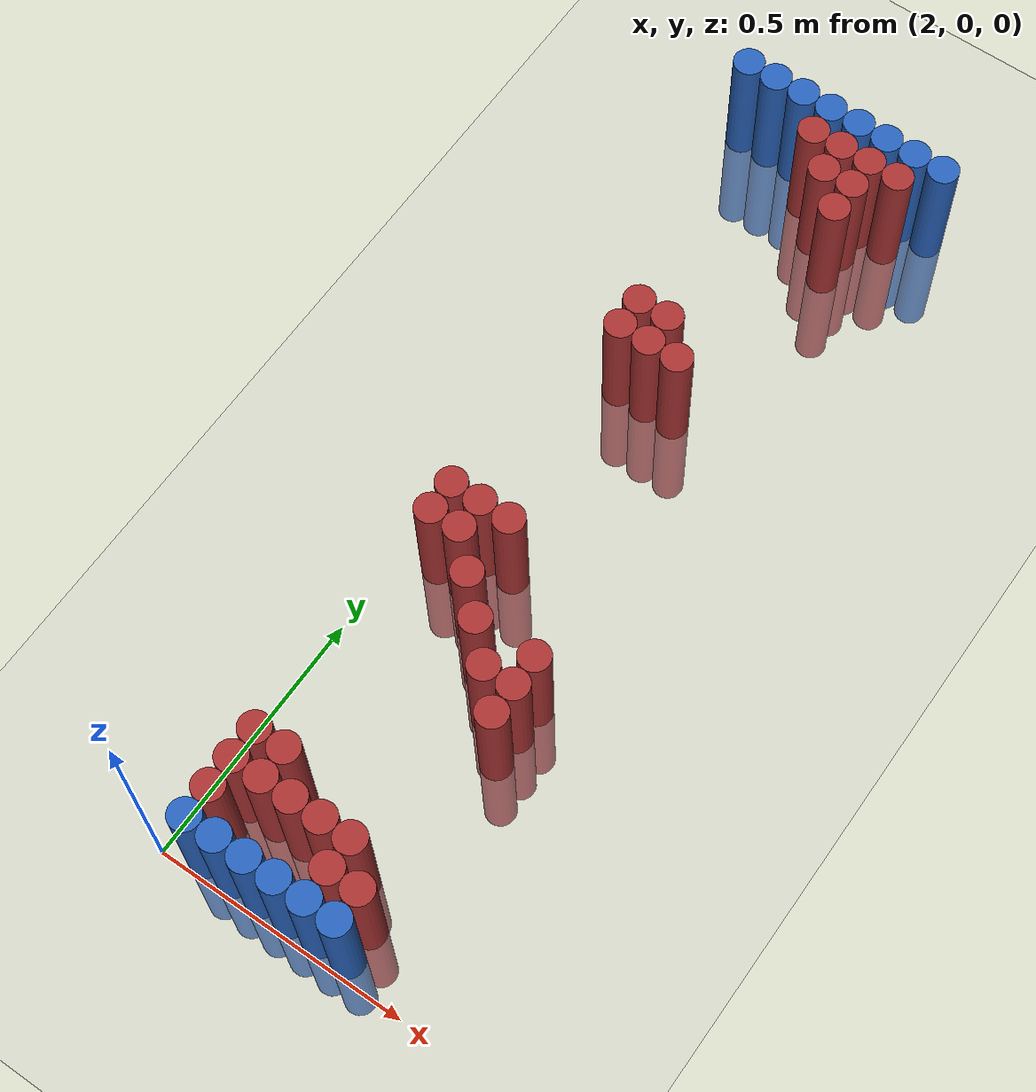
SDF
<sdf version="1.6">
 <world name="default">
  <model name="ground_plane">
   <static>1</static>
   <link name="link">
    <collision name="collision">
     <geometry><plane><normal>0 0 1</normal><size>100 100</size></plane></geometry>
     <surface><friction><ode><mu>100</mu><mu2>50</mu2></ode></friction></surface>
    </collision>
    <visual name="visual">
     <cast_shadows>0</cast_shadows>
     <geometry><plane><normal>0 0 1</normal><size>100 100</size></plane></geometry>
     <material>
      <script><uri>file://media/materials/scripts/gazebo.material</uri><name>Gazebo/Grey</name></script>
     </material>
    </visual>
   </link>
  </model>
  <model name="unit_cylinder_94">
   <static>1</static>
   <pose>2.010000 1.770000 0.000000 0.000000 0.000000 0.000000</pose>
   <link name="link">
    <inertial>
     <mass>1</mass>
     <inertia><ixx>0.145833</ixx><ixy>0</ixy><ixz>0</ixz><iyy>0.145833</iyy><iyz>0</iyz><izz>0.125</izz></inertia>
    </inertial>
    <collision name="collision">
     <geometry><cylinder><radius>0.030000</radius><length>0.5</length></cylinder></geometry>
    </collision>
    <visual name="visual">
     <geometry><cylinder><radius>0.030000</radius><length>0.5</length></cylinder></geometry>
     <material>
      <ambient>0.152000 0.379000 0.720000 1</ambient>
      <diffuse>0.152000 0.379000 0.720000 1</diffuse>
     </material>
     <material>
      <script><name>Gazebo/Grey</name><uri>file://media/materials/scripts/gazebo.material</uri></script>
     </material>
    </visual>
   </link>
  </model>
  <model name="unit_cylinder_95">
   <static>1</static>
   <pose>2.070000 1.770000 0.000000 0.000000 0.000000 0.000000</pose>
   <link name="link">
    <inertial>
     <mass>1</mass>
     <inertia><ixx>0.145833</ixx><ixy>0</ixy><ixz>0</ixz><iyy>0.145833</iyy><iyz>0</iyz><izz>0.125</izz></inertia>
    </inertial>
    <collision name="collision">
     <geometry><cylinder><radius>0.030000</radius><length>0.5</length></cylinder></geometry>
    </collision>
    <visual name="visual">
     <geometry><cylinder><radius>0.030000</radius><length>0.5</length></cylinder></geometry>
     <material>
      <ambient>0.152000 0.379000 0.720000 1</ambient>
      <diffuse>0.152000 0.379000 0.720000 1</diffuse>
     </material>
     <material>
      <script><name>Gazebo/Grey</name><uri>file://media/materials/scripts/gazebo.material</uri></script>
     </material>
    </visual>
   </link>
  </model>
  <model name="unit_cylinder_96">
   <static>1</static>
   <pose>2.130000 1.770000 0.000000 0.000000 0.000000 0.000000</pose>
   <link name="link">
    <inertial>
     <mass>1</mass>
     <inertia><ixx>0.145833</ixx><ixy>0</ixy><ixz>0</ixz><iyy>0.145833</iyy><iyz>0</iyz><izz>0.125</izz></inertia>
    </inertial>
    <collision name="collision">
     <geometry><cylinder><radius>0.030000</radius><length>0.5</length></cylinder></geometry>
    </collision>
    <visual name="visual">
     <geometry><cylinder><radius>0.030000</radius><length>0.5</length></cylinder></geometry>
     <material>
      <ambient>0.152000 0.379000 0.720000 1</ambient>
      <diffuse>0.152000 0.379000 0.720000 1</diffuse>
     </material>
     <material>
      <script><name>Gazebo/Grey</name><uri>file://media/materials/scripts/gazebo.material</uri></script>
     </material>
    </visual>
   </link>
  </model>
  <model name="unit_cylinder_97">
   <static>1</static>
   <pose>2.190000 1.770000 0.000000 0.000000 0.000000 0.000000</pose>
   <link name="link">
    <inertial>
     <mass>1</mass>
     <inertia><ixx>0.145833</ixx><ixy>0</ixy><ixz>0</ixz><iyy>0.145833</iyy><iyz>0</iyz><izz>0.125</izz></inertia>
    </inertial>
    <collision name="collision">
     <geometry><cylinder><radius>0.030000</radius><length>0.5</length></cylinder></geometry>
    </collision>
    <visual name="visual">
     <geometry><cylinder><radius>0.030000</radius><length>0.5</length></cylinder></geometry>
     <material>
      <ambient>0.152000 0.379000 0.720000 1</ambient>
      <diffuse>0.152000 0.379000 0.720000 1</diffuse>
     </material>
     <material>
      <script><name>Gazebo/Grey</name><uri>file://media/materials/scripts/gazebo.material</uri></script>
     </material>
    </visual>
   </link>
  </model>
  <model name="unit_cylinder_98">
   <static>1</static>
   <pose>2.250000 1.770000 0.000000 0.000000 0.000000 0.000000</pose>
   <link name="link">
    <inertial>
     <mass>1</mass>
     <inertia><ixx>0.145833</ixx><ixy>0</ixy><ixz>0</ixz><iyy>0.145833</iyy><iyz>0</iyz><izz>0.125</izz></inertia>
    </inertial>
    <collision name="collision">
     <geometry><cylinder><radius>0.030000</radius><length>0.5</length></cylinder></geometry>
    </collision>
    <visual name="visual">
     <geometry><cylinder><radius>0.030000</radius><length>0.5</length></cylinder></geometry>
     <material>
      <ambient>0.152000 0.379000 0.720000 1</ambient>
      <diffuse>0.152000 0.379000 0.720000 1</diffuse>
     </material>
     <material>
      <script><name>Gazebo/Grey</name><uri>file://media/materials/scripts/gazebo.material</uri></script>
     </material>
    </visual>
   </link>
  </model>
  <model name="unit_cylinder_99">
   <static>1</static>
   <pose>2.310000 1.770000 0.000000 0.000000 0.000000 0.000000</pose>
   <link name="link">
    <inertial>
     <mass>1</mass>
     <inertia><ixx>0.145833</ixx><ixy>0</ixy><ixz>0</ixz><iyy>0.145833</iyy><iyz>0</iyz><izz>0.125</izz></inertia>
    </inertial>
    <collision name="collision">
     <geometry><cylinder><radius>0.030000</radius><length>0.5</length></cylinder></geometry>
    </collision>
    <visual name="visual">
     <geometry><cylinder><radius>0.030000</radius><length>0.5</length></cylinder></geometry>
     <material>
      <ambient>0.152000 0.379000 0.720000 1</ambient>
      <diffuse>0.152000 0.379000 0.720000 1</diffuse>
     </material>
     <material>
      <script><name>Gazebo/Grey</name><uri>file://media/materials/scripts/gazebo.material</uri></script>
     </material>
    </visual>
   </link>
  </model>
  <model name="unit_cylinder_100">
   <static>1</static>
   <pose>2.370000 1.770000 0.000000 0.000000 0.000000 0.000000</pose>
   <link name="link">
    <inertial>
     <mass>1</mass>
     <inertia><ixx>0.145833</ixx><ixy>0</ixy><ixz>0</ixz><iyy>0.145833</iyy><iyz>0</iyz><izz>0.125</izz></inertia>
    </inertial>
    <collision name="collision">
     <geometry><cylinder><radius>0.030000</radius><length>0.5</length></cylinder></geometry>
    </collision>
    <visual name="visual">
     <geometry><cylinder><radius>0.030000</radius><length>0.5</length></cylinder></geometry>
     <material>
      <ambient>0.152000 0.379000 0.720000 1</ambient>
      <diffuse>0.152000 0.379000 0.720000 1</diffuse>
     </material>
     <material>
      <script><name>Gazebo/Grey</name><uri>file://media/materials/scripts/gazebo.material</uri></script>
     </material>
    </visual>
   </link>
  </model>
  <model name="unit_cylinder_101">
   <static>1</static>
   <pose>2.430000 1.770000 0.000000 0.000000 0.000000 0.000000</pose>
   <link name="link">
    <inertial>
     <mass>1</mass>
     <inertia><ixx>0.145833</ixx><ixy>0</ixy><ixz>0</ixz><iyy>0.145833</iyy><iyz>0</iyz><izz>0.125</izz></inertia>
    </inertial>
    <collision name="collision">
     <geometry><cylinder><radius>0.030000</radius><length>0.5</length></cylinder></geometry>
    </collision>
    <visual name="visual">
     <geometry><cylinder><radius>0.030000</radius><length>0.5</length></cylinder></geometry>
     <material>
      <ambient>0.152000 0.379000 0.720000 1</ambient>
      <diffuse>0.152000 0.379000 0.720000 1</diffuse>
     </material>
     <material>
      <script><name>Gazebo/Grey</name><uri>file://media/materials/scripts/gazebo.material</uri></script>
     </material>
    </visual>
   </link>
  </model>
  <model name="unit_cylinder_125">
   <static>1</static>
   <pose>2.190000 1.710000 0.000000 0.000000 0.000000 0.000000</pose>
   <link name="link">
    <inertial>
     <mass>1</mass>
     <inertia><ixx>0.145833</ixx><ixy>0</ixy><ixz>0</ixz><iyy>0.145833</iyy><iyz>0</iyz><izz>0.125</izz></inertia>
    </inertial>
    <collision name="collision">
     <geometry><cylinder><radius>0.030000</radius><length>0.5</length></cylinder></geometry>
    </collision>
    <visual name="visual">
     <geometry><cylinder><radius>0.030000</radius><length>0.5</length></cylinder></geometry>
     <material>
      <ambient>0.648000 0.192000 0.192000 1</ambient>
      <diffuse>0.648000 0.192000 0.192000 1</diffuse>
     </material>
     <material>
      <script><name>Gazebo/Grey</name><uri>file://media/materials/scripts/gazebo.material</uri></script>
     </material>
    </visual>
   </link>
  </model>
  <model name="unit_cylinder_126">
   <static>1</static>
   <pose>2.250000 1.710000 0.000000 0.000000 0.000000 0.000000</pose>
   <link name="link">
    <inertial>
     <mass>1</mass>
     <inertia><ixx>0.145833</ixx><ixy>0</ixy><ixz>0</ixz><iyy>0.145833</iyy><iyz>0</iyz><izz>0.125</izz></inertia>
    </inertial>
    <collision name="collision">
     <geometry><cylinder><radius>0.030000</radius><length>0.5</length></cylinder></geometry>
    </collision>
    <visual name="visual">
     <geometry><cylinder><radius>0.030000</radius><length>0.5</length></cylinder></geometry>
     <material>
      <ambient>0.648000 0.192000 0.192000 1</ambient>
      <diffuse>0.648000 0.192000 0.192000 1</diffuse>
     </material>
     <material>
      <script><name>Gazebo/Grey</name><uri>file://media/materials/scripts/gazebo.material</uri></script>
     </material>
    </visual>
   </link>
  </model>
  <model name="unit_cylinder_127">
   <static>1</static>
   <pose>2.310000 1.710000 0.000000 0.000000 0.000000 0.000000</pose>
   <link name="link">
    <inertial>
     <mass>1</mass>
     <inertia><ixx>0.145833</ixx><ixy>0</ixy><ixz>0</ixz><iyy>0.145833</iyy><iyz>0</iyz><izz>0.125</izz></inertia>
    </inertial>
    <collision name="collision">
     <geometry><cylinder><radius>0.030000</radius><length>0.5</length></cylinder></geometry>
    </collision>
    <visual name="visual">
     <geometry><cylinder><radius>0.030000</radius><length>0.5</length></cylinder></geometry>
     <material>
      <ambient>0.648000 0.192000 0.192000 1</ambient>
      <diffuse>0.648000 0.192000 0.192000 1</diffuse>
     </material>
     <material>
      <script><name>Gazebo/Grey</name><uri>file://media/materials/scripts/gazebo.material</uri></script>
     </material>
    </visual>
   </link>
  </model>
  <model name="unit_cylinder_128">
   <static>1</static>
   <pose>2.370000 1.710000 0.000000 0.000000 0.000000 0.000000</pose>
   <link name="link">
    <inertial>
     <mass>1</mass>
     <inertia><ixx>0.145833</ixx><ixy>0</ixy><ixz>0</ixz><iyy>0.145833</iyy><iyz>0</iyz><izz>0.125</izz></inertia>
    </inertial>
    <collision name="collision">
     <geometry><cylinder><radius>0.030000</radius><length>0.5</length></cylinder></geometry>
    </collision>
    <visual name="visual">
     <geometry><cylinder><radius>0.030000</radius><length>0.5</length></cylinder></geometry>
     <material>
      <ambient>0.648000 0.192000 0.192000 1</ambient>
      <diffuse>0.648000 0.192000 0.192000 1</diffuse>
     </material>
     <material>
      <script><name>Gazebo/Grey</name><uri>file://media/materials/scripts/gazebo.material</uri></script>
     </material>
    </visual>
   </link>
  </model>
  <model name="unit_cylinder_140">
   <static>1</static>
   <pose>2.250000 1.650000 0.000000 0.000000 0.000000 0.000000</pose>
   <link name="link">
    <inertial>
     <mass>1</mass>
     <inertia><ixx>0.145833</ixx><ixy>0</ixy><ixz>0</ixz><iyy>0.145833</iyy><iyz>0</iyz><izz>0.125</izz></inertia>
    </inertial>
    <collision name="collision">
     <geometry><cylinder><radius>0.030000</radius><length>0.5</length></cylinder></geometry>
    </collision>
    <visual name="visual">
     <geometry><cylinder><radius>0.030000</radius><length>0.5</length></cylinder></geometry>
     <material>
      <ambient>0.648000 0.192000 0.192000 1</ambient>
      <diffuse>0.648000 0.192000 0.192000 1</diffuse>
     </material>
     <material>
      <script><name>Gazebo/Grey</name><uri>file://media/materials/scripts/gazebo.material</uri></script>
     </material>
    </visual>
   </link>
  </model>
  <model name="unit_cylinder_141">
   <static>1</static>
   <pose>2.310000 1.650000 0.000000 0.000000 0.000000 0.000000</pose>
   <link name="link">
    <inertial>
     <mass>1</mass>
     <inertia><ixx>0.145833</ixx><ixy>0</ixy><ixz>0</ixz><iyy>0.145833</iyy><iyz>0</iyz><izz>0.125</izz></inertia>
    </inertial>
    <collision name="collision">
     <geometry><cylinder><radius>0.030000</radius><length>0.5</length></cylinder></geometry>
    </collision>
    <visual name="visual">
     <geometry><cylinder><radius>0.030000</radius><length>0.5</length></cylinder></geometry>
     <material>
      <ambient>0.648000 0.192000 0.192000 1</ambient>
      <diffuse>0.648000 0.192000 0.192000 1</diffuse>
     </material>
     <material>
      <script><name>Gazebo/Grey</name><uri>file://media/materials/scripts/gazebo.material</uri></script>
     </material>
    </visual>
   </link>
  </model>
  <model name="unit_cylinder_149">
   <static>1</static>
   <pose>2.310000 1.590000 0.000000 0.000000 0.000000 0.000000</pose>
   <link name="link">
    <inertial>
     <mass>1</mass>
     <inertia><ixx>0.145833</ixx><ixy>0</ixy><ixz>0</ixz><iyy>0.145833</iyy><iyz>0</iyz><izz>0.125</izz></inertia>
    </inertial>
    <collision name="collision">
     <geometry><cylinder><radius>0.030000</radius><length>0.5</length></cylinder></geometry>
    </collision>
    <visual name="visual">
     <geometry><cylinder><radius>0.030000</radius><length>0.5</length></cylinder></geometry>
     <material>
      <ambient>0.648000 0.192000 0.192000 1</ambient>
      <diffuse>0.648000 0.192000 0.192000 1</diffuse>
     </material>
     <material>
      <script><name>Gazebo/Grey</name><uri>file://media/materials/scripts/gazebo.material</uri></script>
     </material>
    </visual>
   </link>
  </model>
  <model name="unit_cylinder_179">
   <static>1</static>
   <pose>2.130000 1.230000 0.000000 0.000000 0.000000 0.000000</pose>
   <link name="link">
    <inertial>
     <mass>1</mass>
     <inertia><ixx>0.145833</ixx><ixy>0</ixy><ixz>0</ixz><iyy>0.145833</iyy><iyz>0</iyz><izz>0.125</izz></inertia>
    </inertial>
    <collision name="collision">
     <geometry><cylinder><radius>0.030000</radius><length>0.5</length></cylinder></geometry>
    </collision>
    <visual name="visual">
     <geometry><cylinder><radius>0.030000</radius><length>0.5</length></cylinder></geometry>
     <material>
      <ambient>0.648000 0.192000 0.192000 1</ambient>
      <diffuse>0.648000 0.192000 0.192000 1</diffuse>
     </material>
     <material>
      <script><name>Gazebo/Grey</name><uri>file://media/materials/scripts/gazebo.material</uri></script>
     </material>
    </visual>
   </link>
  </model>
  <model name="unit_cylinder_180">
   <static>1</static>
   <pose>2.190000 1.230000 0.000000 0.000000 0.000000 0.000000</pose>
   <link name="link">
    <inertial>
     <mass>1</mass>
     <inertia><ixx>0.145833</ixx><ixy>0</ixy><ixz>0</ixz><iyy>0.145833</iyy><iyz>0</iyz><izz>0.125</izz></inertia>
    </inertial>
    <collision name="collision">
     <geometry><cylinder><radius>0.030000</radius><length>0.5</length></cylinder></geometry>
    </collision>
    <visual name="visual">
     <geometry><cylinder><radius>0.030000</radius><length>0.5</length></cylinder></geometry>
     <material>
      <ambient>0.648000 0.192000 0.192000 1</ambient>
      <diffuse>0.648000 0.192000 0.192000 1</diffuse>
     </material>
     <material>
      <script><name>Gazebo/Grey</name><uri>file://media/materials/scripts/gazebo.material</uri></script>
     </material>
    </visual>
   </link>
  </model>
  <model name="unit_cylinder_181">
   <static>1</static>
   <pose>2.130000 1.170000 0.000000 0.000000 0.000000 0.000000</pose>
   <link name="link">
    <inertial>
     <mass>1</mass>
     <inertia><ixx>0.145833</ixx><ixy>0</ixy><ixz>0</ixz><iyy>0.145833</iyy><iyz>0</iyz><izz>0.125</izz></inertia>
    </inertial>
    <collision name="collision">
     <geometry><cylinder><radius>0.030000</radius><length>0.5</length></cylinder></geometry>
    </collision>
    <visual name="visual">
     <geometry><cylinder><radius>0.030000</radius><length>0.5</length></cylinder></geometry>
     <material>
      <ambient>0.648000 0.192000 0.192000 1</ambient>
      <diffuse>0.648000 0.192000 0.192000 1</diffuse>
     </material>
     <material>
      <script><name>Gazebo/Grey</name><uri>file://media/materials/scripts/gazebo.material</uri></script>
     </material>
    </visual>
   </link>
  </model>
  <model name="unit_cylinder_182">
   <static>1</static>
   <pose>2.190000 1.170000 0.000000 0.000000 0.000000 0.000000</pose>
   <link name="link">
    <inertial>
     <mass>1</mass>
     <inertia><ixx>0.145833</ixx><ixy>0</ixy><ixz>0</ixz><iyy>0.145833</iyy><iyz>0</iyz><izz>0.125</izz></inertia>
    </inertial>
    <collision name="collision">
     <geometry><cylinder><radius>0.030000</radius><length>0.5</length></cylinder></geometry>
    </collision>
    <visual name="visual">
     <geometry><cylinder><radius>0.030000</radius><length>0.5</length></cylinder></geometry>
     <material>
      <ambient>0.648000 0.192000 0.192000 1</ambient>
      <diffuse>0.648000 0.192000 0.192000 1</diffuse>
     </material>
     <material>
      <script><name>Gazebo/Grey</name><uri>file://media/materials/scripts/gazebo.material</uri></script>
     </material>
    </visual>
   </link>
  </model>
  <model name="unit_cylinder_183">
   <static>1</static>
   <pose>2.250000 1.170000 0.000000 0.000000 0.000000 0.000000</pose>
   <link name="link">
    <inertial>
     <mass>1</mass>
     <inertia><ixx>0.145833</ixx><ixy>0</ixy><ixz>0</ixz><iyy>0.145833</iyy><iyz>0</iyz><izz>0.125</izz></inertia>
    </inertial>
    <collision name="collision">
     <geometry><cylinder><radius>0.030000</radius><length>0.5</length></cylinder></geometry>
    </collision>
    <visual name="visual">
     <geometry><cylinder><radius>0.030000</radius><length>0.5</length></cylinder></geometry>
     <material>
      <ambient>0.648000 0.192000 0.192000 1</ambient>
      <diffuse>0.648000 0.192000 0.192000 1</diffuse>
     </material>
     <material>
      <script><name>Gazebo/Grey</name><uri>file://media/materials/scripts/gazebo.material</uri></script>
     </material>
    </visual>
   </link>
  </model>
  <model name="unit_cylinder_204">
   <static>1</static>
   <pose>2.070000 0.750000 0.000000 0.000000 0.000000 0.000000</pose>
   <link name="link">
    <inertial>
     <mass>1</mass>
     <inertia><ixx>0.145833</ixx><ixy>0</ixy><ixz>0</ixz><iyy>0.145833</iyy><iyz>0</iyz><izz>0.125</izz></inertia>
    </inertial>
    <collision name="collision">
     <geometry><cylinder><radius>0.030000</radius><length>0.5</length></cylinder></geometry>
    </collision>
    <visual name="visual">
     <geometry><cylinder><radius>0.030000</radius><length>0.5</length></cylinder></geometry>
     <material>
      <ambient>0.648000 0.192000 0.192000 1</ambient>
      <diffuse>0.648000 0.192000 0.192000 1</diffuse>
     </material>
     <material>
      <script><name>Gazebo/Grey</name><uri>file://media/materials/scripts/gazebo.material</uri></script>
     </material>
    </visual>
   </link>
  </model>
  <model name="unit_cylinder_205">
   <static>1</static>
   <pose>2.130000 0.750000 0.000000 0.000000 0.000000 0.000000</pose>
   <link name="link">
    <inertial>
     <mass>1</mass>
     <inertia><ixx>0.145833</ixx><ixy>0</ixy><ixz>0</ixz><iyy>0.145833</iyy><iyz>0</iyz><izz>0.125</izz></inertia>
    </inertial>
    <collision name="collision">
     <geometry><cylinder><radius>0.030000</radius><length>0.5</length></cylinder></geometry>
    </collision>
    <visual name="visual">
     <geometry><cylinder><radius>0.030000</radius><length>0.5</length></cylinder></geometry>
     <material>
      <ambient>0.648000 0.192000 0.192000 1</ambient>
      <diffuse>0.648000 0.192000 0.192000 1</diffuse>
     </material>
     <material>
      <script><name>Gazebo/Grey</name><uri>file://media/materials/scripts/gazebo.material</uri></script>
     </material>
    </visual>
   </link>
  </model>
  <model name="unit_cylinder_206">
   <static>1</static>
   <pose>2.190000 0.750000 0.000000 0.000000 0.000000 0.000000</pose>
   <link name="link">
    <inertial>
     <mass>1</mass>
     <inertia><ixx>0.145833</ixx><ixy>0</ixy><ixz>0</ixz><iyy>0.145833</iyy><iyz>0</iyz><izz>0.125</izz></inertia>
    </inertial>
    <collision name="collision">
     <geometry><cylinder><radius>0.030000</radius><length>0.5</length></cylinder></geometry>
    </collision>
    <visual name="visual">
     <geometry><cylinder><radius>0.030000</radius><length>0.5</length></cylinder></geometry>
     <material>
      <ambient>0.648000 0.192000 0.192000 1</ambient>
      <diffuse>0.648000 0.192000 0.192000 1</diffuse>
     </material>
     <material>
      <script><name>Gazebo/Grey</name><uri>file://media/materials/scripts/gazebo.material</uri></script>
     </material>
    </visual>
   </link>
  </model>
  <model name="unit_cylinder_211">
   <static>1</static>
   <pose>2.070000 0.690000 0.000000 0.000000 0.000000 0.000000</pose>
   <link name="link">
    <inertial>
     <mass>1</mass>
     <inertia><ixx>0.145833</ixx><ixy>0</ixy><ixz>0</ixz><iyy>0.145833</iyy><iyz>0</iyz><izz>0.125</izz></inertia>
    </inertial>
    <collision name="collision">
     <geometry><cylinder><radius>0.030000</radius><length>0.5</length></cylinder></geometry>
    </collision>
    <visual name="visual">
     <geometry><cylinder><radius>0.030000</radius><length>0.5</length></cylinder></geometry>
     <material>
      <ambient>0.648000 0.192000 0.192000 1</ambient>
      <diffuse>0.648000 0.192000 0.192000 1</diffuse>
     </material>
     <material>
      <script><name>Gazebo/Grey</name><uri>file://media/materials/scripts/gazebo.material</uri></script>
     </material>
    </visual>
   </link>
  </model>
  <model name="unit_cylinder_212">
   <static>1</static>
   <pose>2.130000 0.690000 0.000000 0.000000 0.000000 0.000000</pose>
   <link name="link">
    <inertial>
     <mass>1</mass>
     <inertia><ixx>0.145833</ixx><ixy>0</ixy><ixz>0</ixz><iyy>0.145833</iyy><iyz>0</iyz><izz>0.125</izz></inertia>
    </inertial>
    <collision name="collision">
     <geometry><cylinder><radius>0.030000</radius><length>0.5</length></cylinder></geometry>
    </collision>
    <visual name="visual">
     <geometry><cylinder><radius>0.030000</radius><length>0.5</length></cylinder></geometry>
     <material>
      <ambient>0.648000 0.192000 0.192000 1</ambient>
      <diffuse>0.648000 0.192000 0.192000 1</diffuse>
     </material>
     <material>
      <script><name>Gazebo/Grey</name><uri>file://media/materials/scripts/gazebo.material</uri></script>
     </material>
    </visual>
   </link>
  </model>
  <model name="unit_cylinder_218">
   <static>1</static>
   <pose>2.190000 0.630000 0.000000 0.000000 0.000000 0.000000</pose>
   <link name="link">
    <inertial>
     <mass>1</mass>
     <inertia><ixx>0.145833</ixx><ixy>0</ixy><ixz>0</ixz><iyy>0.145833</iyy><iyz>0</iyz><izz>0.125</izz></inertia>
    </inertial>
    <collision name="collision">
     <geometry><cylinder><radius>0.030000</radius><length>0.5</length></cylinder></geometry>
    </collision>
    <visual name="visual">
     <geometry><cylinder><radius>0.030000</radius><length>0.5</length></cylinder></geometry>
     <material>
      <ambient>0.648000 0.192000 0.192000 1</ambient>
      <diffuse>0.648000 0.192000 0.192000 1</diffuse>
     </material>
     <material>
      <script><name>Gazebo/Grey</name><uri>file://media/materials/scripts/gazebo.material</uri></script>
     </material>
    </visual>
   </link>
  </model>
  <model name="unit_cylinder_223">
   <static>1</static>
   <pose>2.250000 0.570000 0.000000 0.000000 0.000000 0.000000</pose>
   <link name="link">
    <inertial>
     <mass>1</mass>
     <inertia><ixx>0.145833</ixx><ixy>0</ixy><ixz>0</ixz><iyy>0.145833</iyy><iyz>0</iyz><izz>0.125</izz></inertia>
    </inertial>
    <collision name="collision">
     <geometry><cylinder><radius>0.030000</radius><length>0.5</length></cylinder></geometry>
    </collision>
    <visual name="visual">
     <geometry><cylinder><radius>0.030000</radius><length>0.5</length></cylinder></geometry>
     <material>
      <ambient>0.648000 0.192000 0.192000 1</ambient>
      <diffuse>0.648000 0.192000 0.192000 1</diffuse>
     </material>
     <material>
      <script><name>Gazebo/Grey</name><uri>file://media/materials/scripts/gazebo.material</uri></script>
     </material>
    </visual>
   </link>
  </model>
  <model name="unit_cylinder_224">
   <static>1</static>
   <pose>2.370000 0.570000 0.000000 0.000000 0.000000 0.000000</pose>
   <link name="link">
    <inertial>
     <mass>1</mass>
     <inertia><ixx>0.145833</ixx><ixy>0</ixy><ixz>0</ixz><iyy>0.145833</iyy><iyz>0</iyz><izz>0.125</izz></inertia>
    </inertial>
    <collision name="collision">
     <geometry><cylinder><radius>0.030000</radius><length>0.5</length></cylinder></geometry>
    </collision>
    <visual name="visual">
     <geometry><cylinder><radius>0.030000</radius><length>0.5</length></cylinder></geometry>
     <material>
      <ambient>0.648000 0.192000 0.192000 1</ambient>
      <diffuse>0.648000 0.192000 0.192000 1</diffuse>
     </material>
     <material>
      <script><name>Gazebo/Grey</name><uri>file://media/materials/scripts/gazebo.material</uri></script>
     </material>
    </visual>
   </link>
  </model>
  <model name="unit_cylinder_231">
   <static>1</static>
   <pose>2.310000 0.510000 0.000000 0.000000 0.000000 0.000000</pose>
   <link name="link">
    <inertial>
     <mass>1</mass>
     <inertia><ixx>0.145833</ixx><ixy>0</ixy><ixz>0</ixz><iyy>0.145833</iyy><iyz>0</iyz><izz>0.125</izz></inertia>
    </inertial>
    <collision name="collision">
     <geometry><cylinder><radius>0.030000</radius><length>0.5</length></cylinder></geometry>
    </collision>
    <visual name="visual">
     <geometry><cylinder><radius>0.030000</radius><length>0.5</length></cylinder></geometry>
     <material>
      <ambient>0.648000 0.192000 0.192000 1</ambient>
      <diffuse>0.648000 0.192000 0.192000 1</diffuse>
     </material>
     <material>
      <script><name>Gazebo/Grey</name><uri>file://media/materials/scripts/gazebo.material</uri></script>
     </material>
    </visual>
   </link>
  </model>
  <model name="unit_cylinder_232">
   <static>1</static>
   <pose>2.370000 0.510000 0.000000 0.000000 0.000000 0.000000</pose>
   <link name="link">
    <inertial>
     <mass>1</mass>
     <inertia><ixx>0.145833</ixx><ixy>0</ixy><ixz>0</ixz><iyy>0.145833</iyy><iyz>0</iyz><izz>0.125</izz></inertia>
    </inertial>
    <collision name="collision">
     <geometry><cylinder><radius>0.030000</radius><length>0.5</length></cylinder></geometry>
    </collision>
    <visual name="visual">
     <geometry><cylinder><radius>0.030000</radius><length>0.5</length></cylinder></geometry>
     <material>
      <ambient>0.648000 0.192000 0.192000 1</ambient>
      <diffuse>0.648000 0.192000 0.192000 1</diffuse>
     </material>
     <material>
      <script><name>Gazebo/Grey</name><uri>file://media/materials/scripts/gazebo.material</uri></script>
     </material>
    </visual>
   </link>
  </model>
  <model name="unit_cylinder_239">
   <static>1</static>
   <pose>2.370000 0.450000 0.000000 0.000000 0.000000 0.000000</pose>
   <link name="link">
    <inertial>
     <mass>1</mass>
     <inertia><ixx>0.145833</ixx><ixy>0</ixy><ixz>0</ixz><iyy>0.145833</iyy><iyz>0</iyz><izz>0.125</izz></inertia>
    </inertial>
    <collision name="collision">
     <geometry><cylinder><radius>0.030000</radius><length>0.5</length></cylinder></geometry>
    </collision>
    <visual name="visual">
     <geometry><cylinder><radius>0.030000</radius><length>0.5</length></cylinder></geometry>
     <material>
      <ambient>0.648000 0.192000 0.192000 1</ambient>
      <diffuse>0.648000 0.192000 0.192000 1</diffuse>
     </material>
     <material>
      <script><name>Gazebo/Grey</name><uri>file://media/materials/scripts/gazebo.material</uri></script>
     </material>
    </visual>
   </link>
  </model>
  <model name="unit_cylinder_265">
   <static>1</static>
   <pose>2.070000 0.210000 0.000000 0.000000 0.000000 0.000000</pose>
   <link name="link">
    <inertial>
     <mass>1</mass>
     <inertia><ixx>0.145833</ixx><ixy>0</ixy><ixz>0</ixz><iyy>0.145833</iyy><iyz>0</iyz><izz>0.125</izz></inertia>
    </inertial>
    <collision name="collision">
     <geometry><cylinder><radius>0.030000</radius><length>0.5</length></cylinder></geometry>
    </collision>
    <visual name="visual">
     <geometry><cylinder><radius>0.030000</radius><length>0.5</length></cylinder></geometry>
     <material>
      <ambient>0.648000 0.192000 0.192000 1</ambient>
      <diffuse>0.648000 0.192000 0.192000 1</diffuse>
     </material>
     <material>
      <script><name>Gazebo/Grey</name><uri>file://media/materials/scripts/gazebo.material</uri></script>
     </material>
    </visual>
   </link>
  </model>
  <model name="unit_cylinder_266">
   <static>1</static>
   <pose>2.130000 0.210000 0.000000 0.000000 0.000000 0.000000</pose>
   <link name="link">
    <inertial>
     <mass>1</mass>
     <inertia><ixx>0.145833</ixx><ixy>0</ixy><ixz>0</ixz><iyy>0.145833</iyy><iyz>0</iyz><izz>0.125</izz></inertia>
    </inertial>
    <collision name="collision">
     <geometry><cylinder><radius>0.030000</radius><length>0.5</length></cylinder></geometry>
    </collision>
    <visual name="visual">
     <geometry><cylinder><radius>0.030000</radius><length>0.5</length></cylinder></geometry>
     <material>
      <ambient>0.648000 0.192000 0.192000 1</ambient>
      <diffuse>0.648000 0.192000 0.192000 1</diffuse>
     </material>
     <material>
      <script><name>Gazebo/Grey</name><uri>file://media/materials/scripts/gazebo.material</uri></script>
     </material>
    </visual>
   </link>
  </model>
  <model name="unit_cylinder_269">
   <static>1</static>
   <pose>2.070000 0.150000 0.000000 0.000000 0.000000 0.000000</pose>
   <link name="link">
    <inertial>
     <mass>1</mass>
     <inertia><ixx>0.145833</ixx><ixy>0</ixy><ixz>0</ixz><iyy>0.145833</iyy><iyz>0</iyz><izz>0.125</izz></inertia>
    </inertial>
    <collision name="collision">
     <geometry><cylinder><radius>0.030000</radius><length>0.5</length></cylinder></geometry>
    </collision>
    <visual name="visual">
     <geometry><cylinder><radius>0.030000</radius><length>0.5</length></cylinder></geometry>
     <material>
      <ambient>0.648000 0.192000 0.192000 1</ambient>
      <diffuse>0.648000 0.192000 0.192000 1</diffuse>
     </material>
     <material>
      <script><name>Gazebo/Grey</name><uri>file://media/materials/scripts/gazebo.material</uri></script>
     </material>
    </visual>
   </link>
  </model>
  <model name="unit_cylinder_270">
   <static>1</static>
   <pose>2.130000 0.150000 0.000000 0.000000 0.000000 0.000000</pose>
   <link name="link">
    <inertial>
     <mass>1</mass>
     <inertia><ixx>0.145833</ixx><ixy>0</ixy><ixz>0</ixz><iyy>0.145833</iyy><iyz>0</iyz><izz>0.125</izz></inertia>
    </inertial>
    <collision name="collision">
     <geometry><cylinder><radius>0.030000</radius><length>0.5</length></cylinder></geometry>
    </collision>
    <visual name="visual">
     <geometry><cylinder><radius>0.030000</radius><length>0.5</length></cylinder></geometry>
     <material>
      <ambient>0.648000 0.192000 0.192000 1</ambient>
      <diffuse>0.648000 0.192000 0.192000 1</diffuse>
     </material>
     <material>
      <script><name>Gazebo/Grey</name><uri>file://media/materials/scripts/gazebo.material</uri></script>
     </material>
    </visual>
   </link>
  </model>
  <model name="unit_cylinder_271">
   <static>1</static>
   <pose>2.190000 0.150000 0.000000 0.000000 0.000000 0.000000</pose>
   <link name="link">
    <inertial>
     <mass>1</mass>
     <inertia><ixx>0.145833</ixx><ixy>0</ixy><ixz>0</ixz><iyy>0.145833</iyy><iyz>0</iyz><izz>0.125</izz></inertia>
    </inertial>
    <collision name="collision">
     <geometry><cylinder><radius>0.030000</radius><length>0.5</length></cylinder></geometry>
    </collision>
    <visual name="visual">
     <geometry><cylinder><radius>0.030000</radius><length>0.5</length></cylinder></geometry>
     <material>
      <ambient>0.648000 0.192000 0.192000 1</ambient>
      <diffuse>0.648000 0.192000 0.192000 1</diffuse>
     </material>
     <material>
      <script><name>Gazebo/Grey</name><uri>file://media/materials/scripts/gazebo.material</uri></script>
     </material>
    </visual>
   </link>
  </model>
  <model name="unit_cylinder_272">
   <static>1</static>
   <pose>2.250000 0.150000 0.000000 0.000000 0.000000 0.000000</pose>
   <link name="link">
    <inertial>
     <mass>1</mass>
     <inertia><ixx>0.145833</ixx><ixy>0</ixy><ixz>0</ixz><iyy>0.145833</iyy><iyz>0</iyz><izz>0.125</izz></inertia>
    </inertial>
    <collision name="collision">
     <geometry><cylinder><radius>0.030000</radius><length>0.5</length></cylinder></geometry>
    </collision>
    <visual name="visual">
     <geometry><cylinder><radius>0.030000</radius><length>0.5</length></cylinder></geometry>
     <material>
      <ambient>0.648000 0.192000 0.192000 1</ambient>
      <diffuse>0.648000 0.192000 0.192000 1</diffuse>
     </material>
     <material>
      <script><name>Gazebo/Grey</name><uri>file://media/materials/scripts/gazebo.material</uri></script>
     </material>
    </visual>
   </link>
  </model>
  <model name="unit_cylinder_273">
   <static>1</static>
   <pose>2.310000 0.150000 0.000000 0.000000 0.000000 0.000000</pose>
   <link name="link">
    <inertial>
     <mass>1</mass>
     <inertia><ixx>0.145833</ixx><ixy>0</ixy><ixz>0</ixz><iyy>0.145833</iyy><iyz>0</iyz><izz>0.125</izz></inertia>
    </inertial>
    <collision name="collision">
     <geometry><cylinder><radius>0.030000</radius><length>0.5</length></cylinder></geometry>
    </collision>
    <visual name="visual">
     <geometry><cylinder><radius>0.030000</radius><length>0.5</length></cylinder></geometry>
     <material>
      <ambient>0.648000 0.192000 0.192000 1</ambient>
      <diffuse>0.648000 0.192000 0.192000 1</diffuse>
     </material>
     <material>
      <script><name>Gazebo/Grey</name><uri>file://media/materials/scripts/gazebo.material</uri></script>
     </material>
    </visual>
   </link>
  </model>
  <model name="unit_cylinder_284">
   <static>1</static>
   <pose>2.070000 0.090000 0.000000 0.000000 0.000000 0.000000</pose>
   <link name="link">
    <inertial>
     <mass>1</mass>
     <inertia><ixx>0.145833</ixx><ixy>0</ixy><ixz>0</ixz><iyy>0.145833</iyy><iyz>0</iyz><izz>0.125</izz></inertia>
    </inertial>
    <collision name="collision">
     <geometry><cylinder><radius>0.030000</radius><length>0.5</length></cylinder></geometry>
    </collision>
    <visual name="visual">
     <geometry><cylinder><radius>0.030000</radius><length>0.5</length></cylinder></geometry>
     <material>
      <ambient>0.648000 0.192000 0.192000 1</ambient>
      <diffuse>0.648000 0.192000 0.192000 1</diffuse>
     </material>
     <material>
      <script><name>Gazebo/Grey</name><uri>file://media/materials/scripts/gazebo.material</uri></script>
     </material>
    </visual>
   </link>
  </model>
  <model name="unit_cylinder_285">
   <static>1</static>
   <pose>2.310000 0.090000 0.000000 0.000000 0.000000 0.000000</pose>
   <link name="link">
    <inertial>
     <mass>1</mass>
     <inertia><ixx>0.145833</ixx><ixy>0</ixy><ixz>0</ixz><iyy>0.145833</iyy><iyz>0</iyz><izz>0.125</izz></inertia>
    </inertial>
    <collision name="collision">
     <geometry><cylinder><radius>0.030000</radius><length>0.5</length></cylinder></geometry>
    </collision>
    <visual name="visual">
     <geometry><cylinder><radius>0.030000</radius><length>0.5</length></cylinder></geometry>
     <material>
      <ambient>0.648000 0.192000 0.192000 1</ambient>
      <diffuse>0.648000 0.192000 0.192000 1</diffuse>
     </material>
     <material>
      <script><name>Gazebo/Grey</name><uri>file://media/materials/scripts/gazebo.material</uri></script>
     </material>
    </visual>
   </link>
  </model>
  <model name="unit_cylinder_286">
   <static>1</static>
   <pose>2.370000 0.090000 0.000000 0.000000 0.000000 0.000000</pose>
   <link name="link">
    <inertial>
     <mass>1</mass>
     <inertia><ixx>0.145833</ixx><ixy>0</ixy><ixz>0</ixz><iyy>0.145833</iyy><iyz>0</iyz><izz>0.125</izz></inertia>
    </inertial>
    <collision name="collision">
     <geometry><cylinder><radius>0.030000</radius><length>0.5</length></cylinder></geometry>
    </collision>
    <visual name="visual">
     <geometry><cylinder><radius>0.030000</radius><length>0.5</length></cylinder></geometry>
     <material>
      <ambient>0.648000 0.192000 0.192000 1</ambient>
      <diffuse>0.648000 0.192000 0.192000 1</diffuse>
     </material>
     <material>
      <script><name>Gazebo/Grey</name><uri>file://media/materials/scripts/gazebo.material</uri></script>
     </material>
    </visual>
   </link>
  </model>
  <model name="unit_cylinder_298">
   <static>1</static>
   <pose>2.070000 0.030000 0.000000 0.000000 0.000000 0.000000</pose>
   <link name="link">
    <inertial>
     <mass>1</mass>
     <inertia><ixx>0.145833</ixx><ixy>0</ixy><ixz>0</ixz><iyy>0.145833</iyy><iyz>0</iyz><izz>0.125</izz></inertia>
    </inertial>
    <collision name="collision">
     <geometry><cylinder><radius>0.030000</radius><length>0.5</length></cylinder></geometry>
    </collision>
    <visual name="visual">
     <geometry><cylinder><radius>0.030000</radius><length>0.5</length></cylinder></geometry>
     <material>
      <ambient>0.152000 0.379000 0.720000 1</ambient>
      <diffuse>0.152000 0.379000 0.720000 1</diffuse>
     </material>
     <material>
      <script><name>Gazebo/Grey</name><uri>file://media/materials/scripts/gazebo.material</uri></script>
     </material>
    </visual>
   </link>
  </model>
  <model name="unit_cylinder_299">
   <static>1</static>
   <pose>2.130000 0.030000 0.000000 0.000000 0.000000 0.000000</pose>
   <link name="link">
    <inertial>
     <mass>1</mass>
     <inertia><ixx>0.145833</ixx><ixy>0</ixy><ixz>0</ixz><iyy>0.145833</iyy><iyz>0</iyz><izz>0.125</izz></inertia>
    </inertial>
    <collision name="collision">
     <geometry><cylinder><radius>0.030000</radius><length>0.5</length></cylinder></geometry>
    </collision>
    <visual name="visual">
     <geometry><cylinder><radius>0.030000</radius><length>0.5</length></cylinder></geometry>
     <material>
      <ambient>0.152000 0.379000 0.720000 1</ambient>
      <diffuse>0.152000 0.379000 0.720000 1</diffuse>
     </material>
     <material>
      <script><name>Gazebo/Grey</name><uri>file://media/materials/scripts/gazebo.material</uri></script>
     </material>
    </visual>
   </link>
  </model>
  <model name="unit_cylinder_300">
   <static>1</static>
   <pose>2.190000 0.030000 0.000000 0.000000 0.000000 0.000000</pose>
   <link name="link">
    <inertial>
     <mass>1</mass>
     <inertia><ixx>0.145833</ixx><ixy>0</ixy><ixz>0</ixz><iyy>0.145833</iyy><iyz>0</iyz><izz>0.125</izz></inertia>
    </inertial>
    <collision name="collision">
     <geometry><cylinder><radius>0.030000</radius><length>0.5</length></cylinder></geometry>
    </collision>
    <visual name="visual">
     <geometry><cylinder><radius>0.030000</radius><length>0.5</length></cylinder></geometry>
     <material>
      <ambient>0.152000 0.379000 0.720000 1</ambient>
      <diffuse>0.152000 0.379000 0.720000 1</diffuse>
     </material>
     <material>
      <script><name>Gazebo/Grey</name><uri>file://media/materials/scripts/gazebo.material</uri></script>
     </material>
    </visual>
   </link>
  </model>
  <model name="unit_cylinder_301">
   <static>1</static>
   <pose>2.250000 0.030000 0.000000 0.000000 0.000000 0.000000</pose>
   <link name="link">
    <inertial>
     <mass>1</mass>
     <inertia><ixx>0.145833</ixx><ixy>0</ixy><ixz>0</ixz><iyy>0.145833</iyy><iyz>0</iyz><izz>0.125</izz></inertia>
    </inertial>
    <collision name="collision">
     <geometry><cylinder><radius>0.030000</radius><length>0.5</length></cylinder></geometry>
    </collision>
    <visual name="visual">
     <geometry><cylinder><radius>0.030000</radius><length>0.5</length></cylinder></geometry>
     <material>
      <ambient>0.152000 0.379000 0.720000 1</ambient>
      <diffuse>0.152000 0.379000 0.720000 1</diffuse>
     </material>
     <material>
      <script><name>Gazebo/Grey</name><uri>file://media/materials/scripts/gazebo.material</uri></script>
     </material>
    </visual>
   </link>
  </model>
  <model name="unit_cylinder_302">
   <static>1</static>
   <pose>2.310000 0.030000 0.000000 0.000000 0.000000 0.000000</pose>
   <link name="link">
    <inertial>
     <mass>1</mass>
     <inertia><ixx>0.145833</ixx><ixy>0</ixy><ixz>0</ixz><iyy>0.145833</iyy><iyz>0</iyz><izz>0.125</izz></inertia>
    </inertial>
    <collision name="collision">
     <geometry><cylinder><radius>0.030000</radius><length>0.5</length></cylinder></geometry>
    </collision>
    <visual name="visual">
     <geometry><cylinder><radius>0.030000</radius><length>0.5</length></cylinder></geometry>
     <material>
      <ambient>0.152000 0.379000 0.720000 1</ambient>
      <diffuse>0.152000 0.379000 0.720000 1</diffuse>
     </material>
     <material>
      <script><name>Gazebo/Grey</name><uri>file://media/materials/scripts/gazebo.material</uri></script>
     </material>
    </visual>
   </link>
  </model>
  <model name="unit_cylinder_303">
   <static>1</static>
   <pose>2.370000 0.030000 0.000000 0.000000 0.000000 0.000000</pose>
   <link name="link">
    <inertial>
     <mass>1</mass>
     <inertia><ixx>0.145833</ixx><ixy>0</ixy><ixz>0</ixz><iyy>0.145833</iyy><iyz>0</iyz><izz>0.125</izz></inertia>
    </inertial>
    <collision name="collision">
     <geometry><cylinder><radius>0.030000</radius><length>0.5</length></cylinder></geometry>
    </collision>
    <visual name="visual">
     <geometry><cylinder><radius>0.030000</radius><length>0.5</length></cylinder></geometry>
     <material>
      <ambient>0.152000 0.379000 0.720000 1</ambient>
      <diffuse>0.152000 0.379000 0.720000 1</diffuse>
     </material>
     <material>
      <script><name>Gazebo/Grey</name><uri>file://media/materials/scripts/gazebo.material</uri></script>
     </material>
    </visual>
   </link>
  </model>
 </world>
</sdf>
